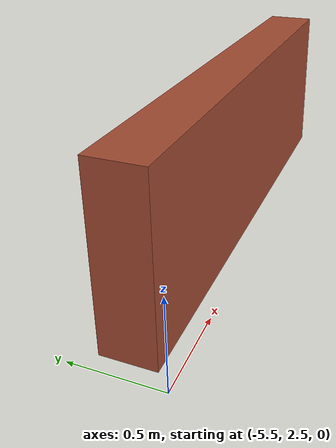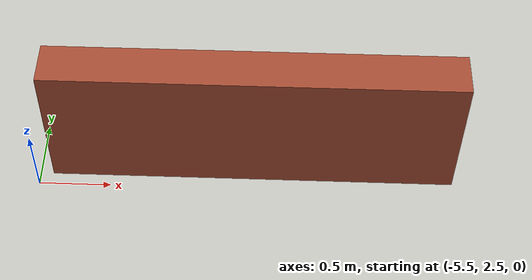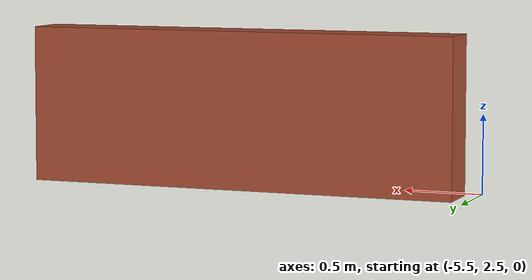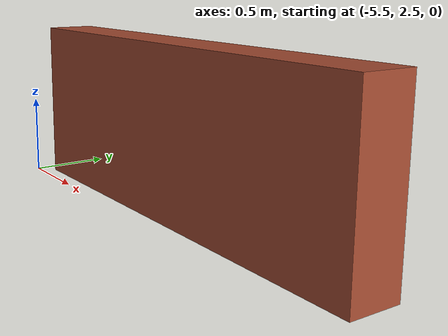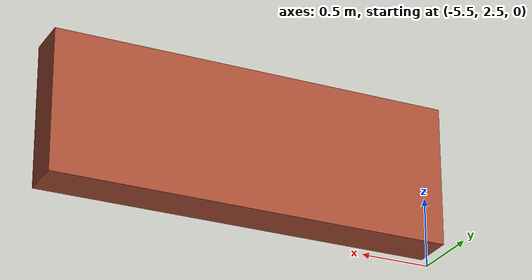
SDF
<?xml version='1.0'?>
<sdf version='1.6'>
  <model name='parede'>
    <pose frame=''>-4.01065 2.738 0 0 -0 0</pose>
    <link name='Wall_2'>
      <collision name='Wall_2_Collision'>
        <geometry>
          <box>
            <size>2.8 0.3 1</size>
          </box>
        </geometry>
        <pose frame=''>0 0 0.5 0 -0 0</pose>
      </collision>
      <visual name='Wall_2_Visual'>
        <pose frame=''>0 0 0.5 0 -0 0</pose>
        <geometry>
          <box>
            <size>2.8 0.3 1</size>
          </box>
        </geometry>
        <material>
          <script>
            <uri>file://media/materials/scripts/gazebo.material</uri>
            <name>Gazebo/Bricks</name>
          </script>
          <ambient>1 1 1 1</ambient>
        </material>
      </visual>
      <pose frame=''>0 0 0 0 -0 3.14159</pose>
    </link>
    <static>1</static>
  </model>
</sdf>
